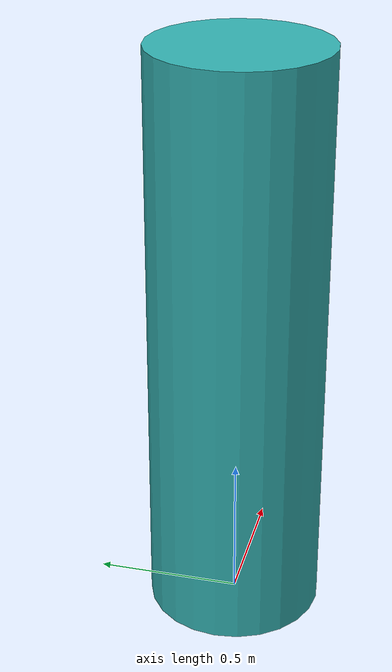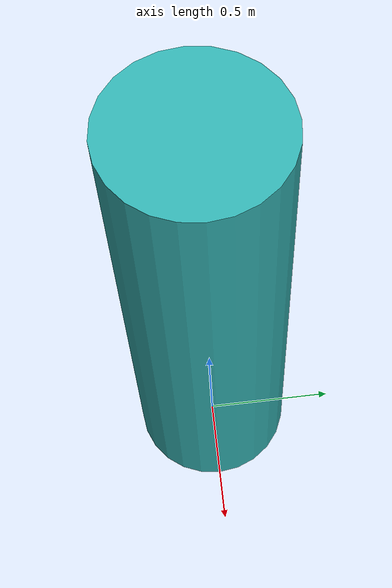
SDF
<?xml version='1.0'?>
<sdf version='1.5'>
  <model name='moving_obstacle_cylinder_thin'>
    <link name='link'>
      <pose frame=''>0 0 1 0 -0 0</pose>
      <inertial>
        <mass>1</mass>
        <inertia>
          <ixx>0.145833</ixx>
          <ixy>0</ixy>
          <ixz>0</ixz>
          <iyy>0.145833</iyy>
          <iyz>0</iyz>
          <izz>0.125</izz>
        </inertia>
        <pose frame=''>0 0 0 0 -0 0</pose>
      </inertial>
      <self_collide>0</self_collide>
      <kinematic>0</kinematic>
      <gravity>0</gravity>
      <visual name='visual'>
        <geometry>
          <cylinder>
            <radius>0.3</radius>
            <length>2</length>
          </cylinder>
        </geometry>
        <material>
          <script>
            <name>Gazebo/Grey</name>
            <uri>file://media/materials/scripts/gazebo.material</uri>
          </script>
          <ambient>0.3 0.3 0.3 1</ambient>
          <diffuse>0.2 0.7 0.7 1</diffuse>
          <specular>0.01 0.01 0.01 1</specular>
          <emissive>0.2 0.7 0 1</emissive>
          <shader type='vertex'>
            <normal_map>__default__</normal_map>
          </shader>
        </material>
        <pose frame=''>0 0 0 0 -0 0</pose>
        <cast_shadows>1</cast_shadows>
        <transparency>0</transparency>
      </visual>
    </link>
    <static>0</static>
    <allow_auto_disable>1</allow_auto_disable>
    <plugin name="model_push" filename="libgazebo_moving_obstacle_sin.so">
        <robotNamespace>/</robotNamespace>
    </plugin>
  </model>
</sdf>
